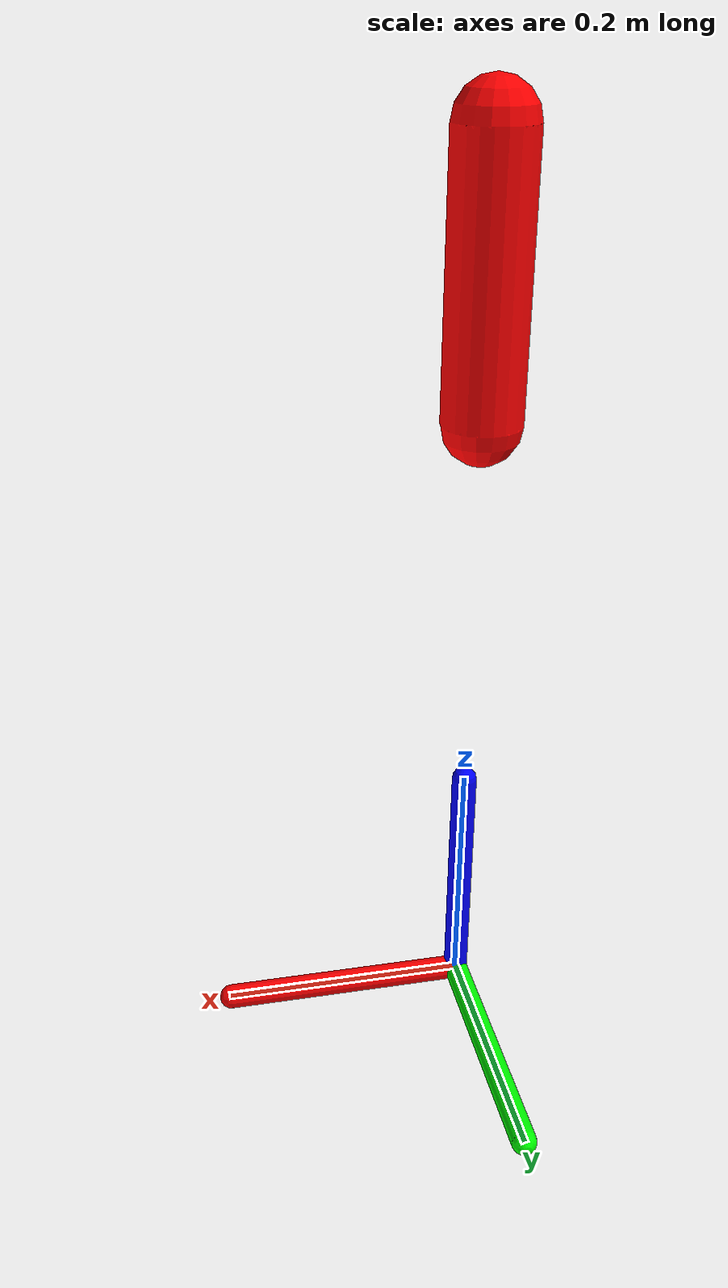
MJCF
<mujoco>
  <option timestep="0.001" gravity="0 0 -9.81"/>
  <!-- rangeなどのパラメータをdegreeで記述する -->
  <compiler angle="degree"/>
  <worldbody>
    <geom type="capsule" fromto="0 0 0  .2 0 0" size="0.01" rgba="1 0 0 1"/>
    <geom type="capsule" fromto="0 0 0  0 .2 0" size="0.01" rgba="0 1 0 1"/>
    <geom type="capsule" fromto="0 0 0  0 0 .2" size="0.01" rgba="0 0 1 1"/>

    <body name="torso" pos="0 0 0.5">
      <joint name="waist" type="hinge" axis="0 1 0" range="-180 180" limited="true"/>
      <geom type="capsule" pos="0 0 0.1" size="0.03 0.1" rgba="1 0 0 1"/>

      <!-- pos: 重心位置 -->
      <!-- mass: 質量[kg] -->
      <!-- diaginertia: 慣性に関わる値。要調査 -->
      <inertial pos="0 0 0.1" mass="1" diaginertia="0.1 0.1 0.1"/>
    </body>
  </worldbody>

  <actuator>
  <!-- kp: 目標値と現在値の差分にかかるゲイン。大きくすると速く目標値に到達する -->
  <!-- kv: 減衰値。小さくすると目標値付近で振動が大きくなる-->
    <position name="waist_act" joint="waist" kp="100" kv="0.1" ctrlrange="-180 180"/>
  </actuator>
</mujoco>
